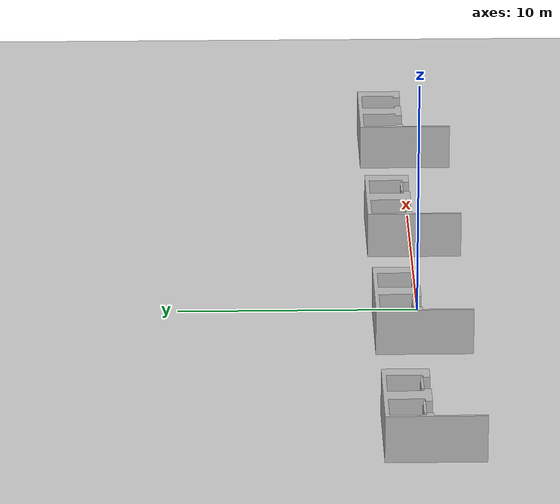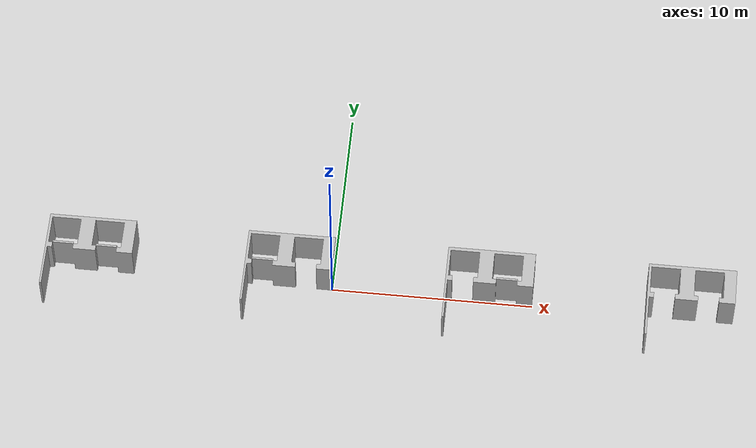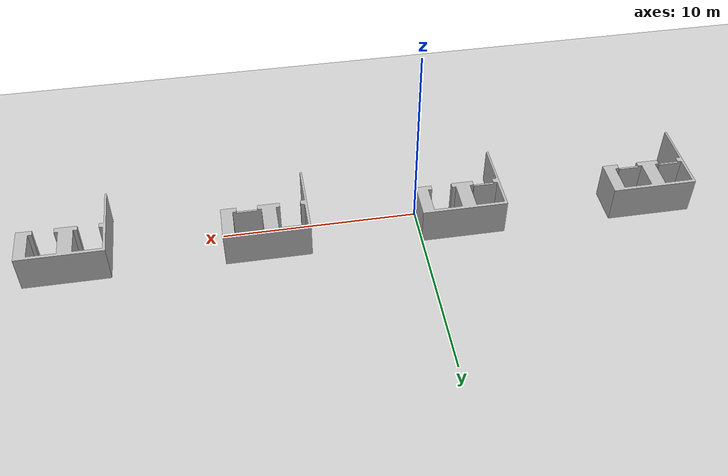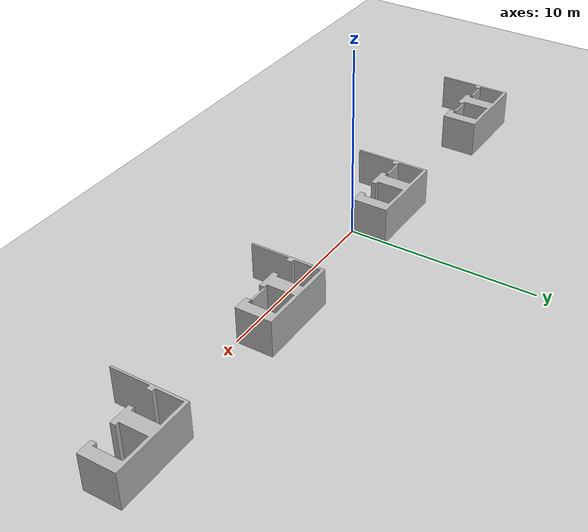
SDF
<sdf version='1.5'>
  <world name='default'>
    <!-- A global light source -->
    <include>
     <uri>model://sun</uri>
    </include>

    <!-- A ground plane -->
    <include>
        <uri>model://ground_plane</uri>
    </include>
    <physics type="ode">
     <real_time_update_rate>100.0</real_time_update_rate>
     <max_step_size>0.01</max_step_size>
     <real_time_factor>1</real_time_factor>
     <ode>
      <solver>
       <type>quick</type>
       <iters>150</iters>
       <precon_iters>0</precon_iters>
       <sor>1.400000</sor>
       <use_dynamic_moi_rescaling>1</use_dynamic_moi_rescaling>
      </solver>
      <constraints>
        <cfm>0.001</cfm>
        <erp>0.2</erp>
        <contact_max_correcting_vel>2000.000000</contact_max_correcting_vel>
        <contact_surface_layer>0.001000</contact_surface_layer>
      </constraints>
     </ode>
    </physics>

    <!-- Load world -->
    <include>
      <uri>model://elevator_cc</uri>
    </include>
    <include>
      <uri>model://elevator_co</uri>
    </include>
    <include>
      <uri>model://elevator_oc</uri>
    </include>
    <include>
      <uri>model://elevator_oo</uri>
    </include>
    <scene>
      <ambient>0.4 0.4 0.4 1</ambient>
      <background>0.7 0.7 0.7 1</background>
      <shadows>false</shadows>
    </scene>

    <gui fullscreen='0'>
     <camera name='user camera'>
       <pose>0.8 0.0 12.0 0 1.5708 0</pose>
       <view_controller>orbit</view_controller>
     </camera>
    </gui>
  </world>
</sdf>

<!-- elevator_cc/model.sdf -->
<sdf version='1.5'>
  <model name="elevator_cc">
    <static>1</static>

    <link name="link">
      <collision name="collision">
        <pose>-10 0 -0.05 0 0 0</pose>
        <geometry>
          <mesh>
            <uri>model://elevator_cc/meshes/both_closed.stl</uri>
            <scale>0.001 0.001 0.001</scale>
          </mesh>
        </geometry>
        <surface>
            <friction>
                <ode>
                    <mu>10000</mu>
                    <mu2>10000</mu2>
                </ode>
            </friction>
        </surface>
      </collision>
      <visual name="visual">
        <pose>-10 0 -0.05 0 0 0</pose>
        <geometry>
          <mesh>
            <uri>model://elevator_cc/meshes/both_closed.stl</uri>
            <scale>0.001 0.001 0.001</scale>
          </mesh>
        </geometry>
      </visual>
    </link>
  </model>
</sdf>

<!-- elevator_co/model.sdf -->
<sdf version='1.5'>
  <model name="elevator_co">
    <static>1</static>

    <link name="link">
      <collision name="collision">
        <pose>0 0 -0.05 0 0 0</pose>
        <geometry>
          <mesh>
            <uri>model://elevator_co/meshes/right_open.stl</uri>
            <scale>0.001 0.001 0.001</scale>
          </mesh>
        </geometry>
        <surface>
            <friction>
                <ode>
                    <mu>10000</mu>
                    <mu2>10000</mu2>
                </ode>
            </friction>
        </surface>
      </collision>
      <visual name="visual">
        <pose>0 0 -0.05 0 0 0</pose>
        <geometry>
          <mesh>
            <uri>model://elevator_co/meshes/right_open.stl</uri>
            <scale>0.001 0.001 0.001</scale>
          </mesh>
        </geometry>
      </visual>
    </link>
  </model>
</sdf>

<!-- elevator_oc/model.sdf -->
<sdf version='1.5'>
  <model name="elevator_oc">
    <static>1</static>

    <link name="link">
      <collision name="collision">
        <pose>10 0 -0.05 0 0 0</pose>
        <geometry>
          <mesh>
            <uri>model://elevator_oc/meshes/left_open.stl</uri>
            <scale>0.001 0.001 0.001</scale>
          </mesh>
        </geometry>
        <surface>
            <friction>
                <ode>
                    <mu>10000</mu>
                    <mu2>10000</mu2>
                </ode>
            </friction>
        </surface>
      </collision>
      <visual name="visual">
        <pose>10 0 -0.05 0 0 0</pose>
        <geometry>
          <mesh>
            <uri>model://elevator_oc/meshes/left_open.stl</uri>
            <scale>0.001 0.001 0.001</scale>
          </mesh>
        </geometry>
      </visual>
    </link>
  </model>
</sdf>

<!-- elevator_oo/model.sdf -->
<sdf version='1.5'>
  <model name="elevator_oo">
    <static>1</static>

    <link name="link">
      <collision name="collision">
        <pose>20 0 -0.05 0 0 0</pose>
        <geometry>
          <mesh>
            <uri>model://elevator_oo/meshes/both_opened.stl</uri>
            <scale>0.001 0.001 0.001</scale>
          </mesh>
        </geometry>
        <surface>
            <friction>
                <ode>
                    <mu>10000</mu>
                    <mu2>10000</mu2>
                </ode>
            </friction>
        </surface>
      </collision>
      <visual name="visual">
        <pose>20 0 -0.05 0 0 0</pose>
        <geometry>
          <mesh>
            <uri>model://elevator_oo/meshes/both_opened.stl</uri>
            <scale>0.001 0.001 0.001</scale>
          </mesh>
        </geometry>
      </visual>
    </link>
  </model>
</sdf>
